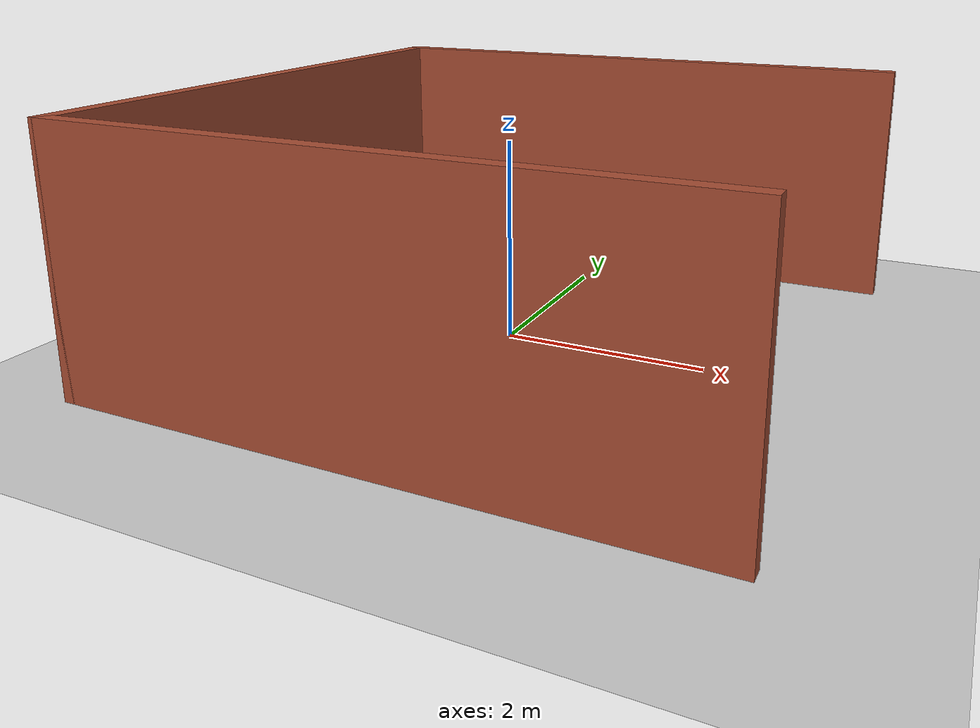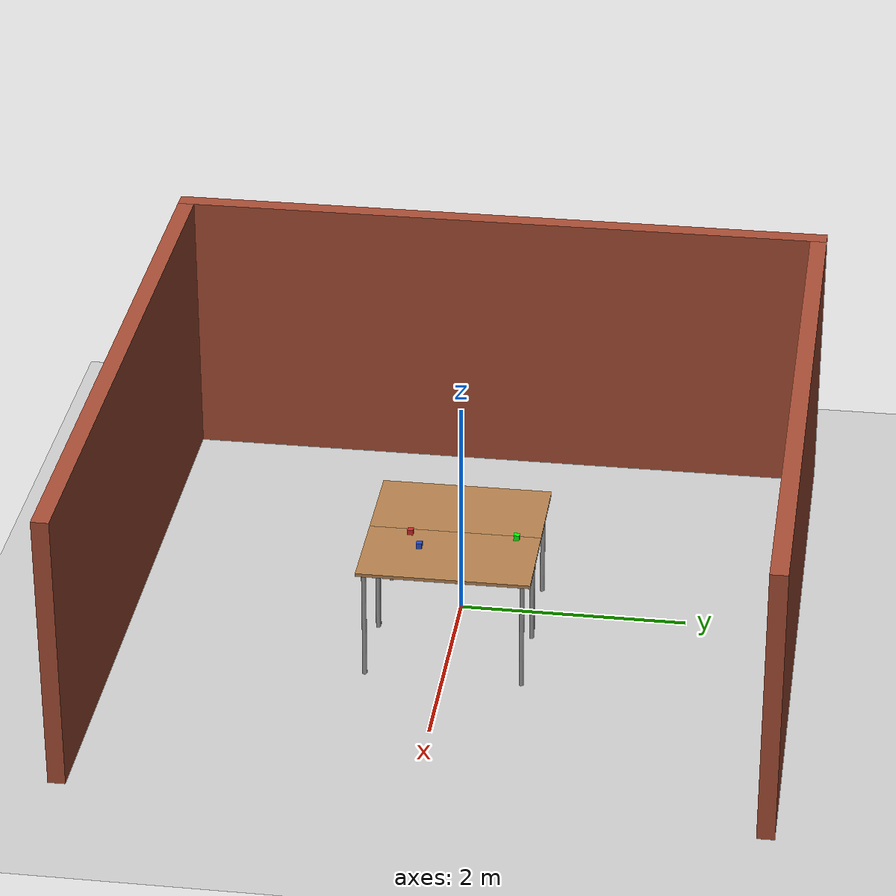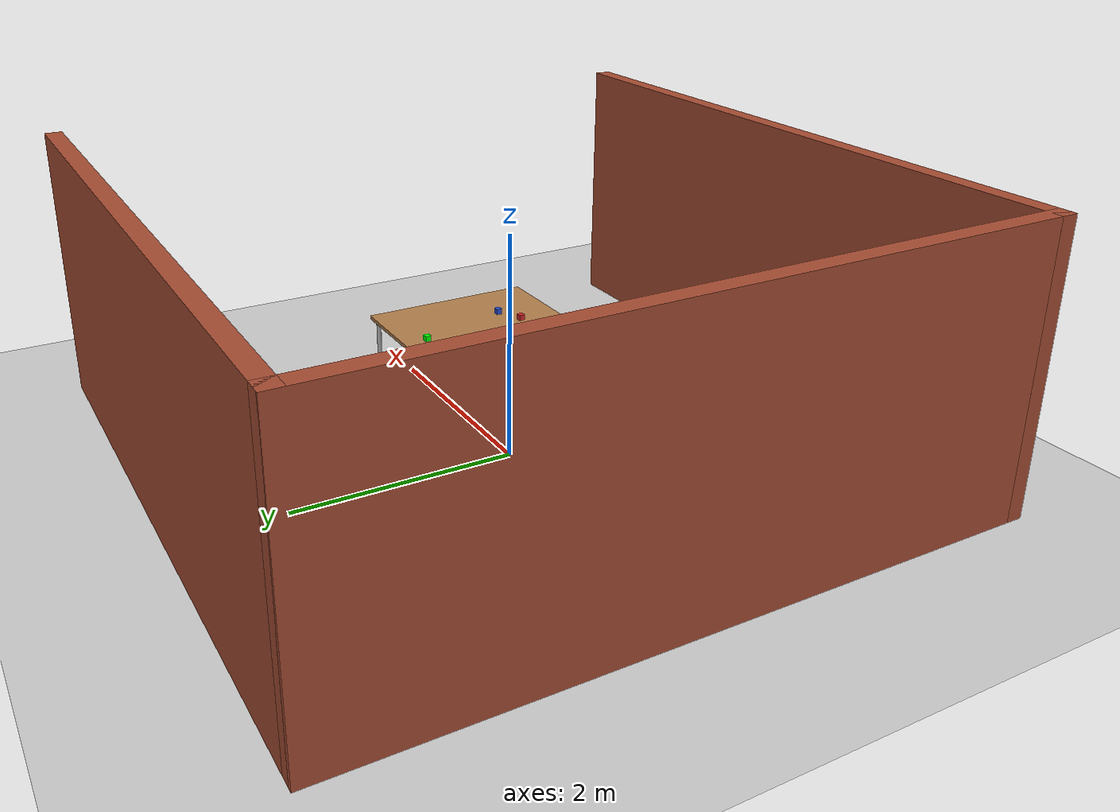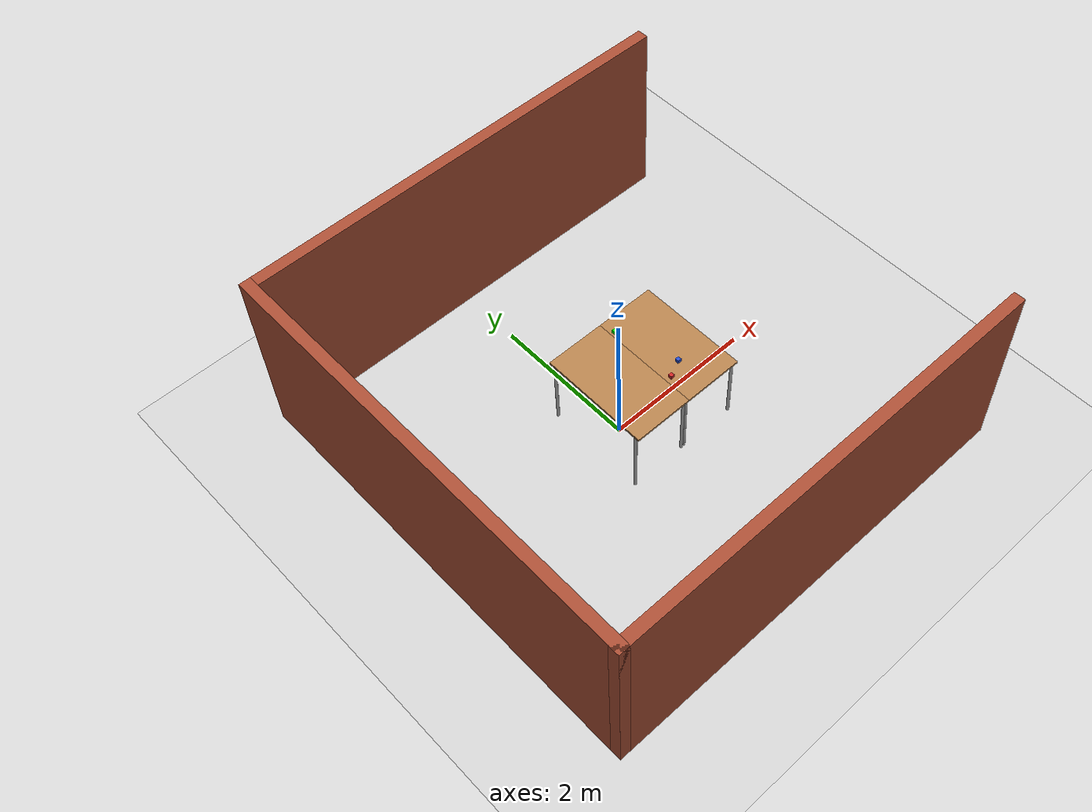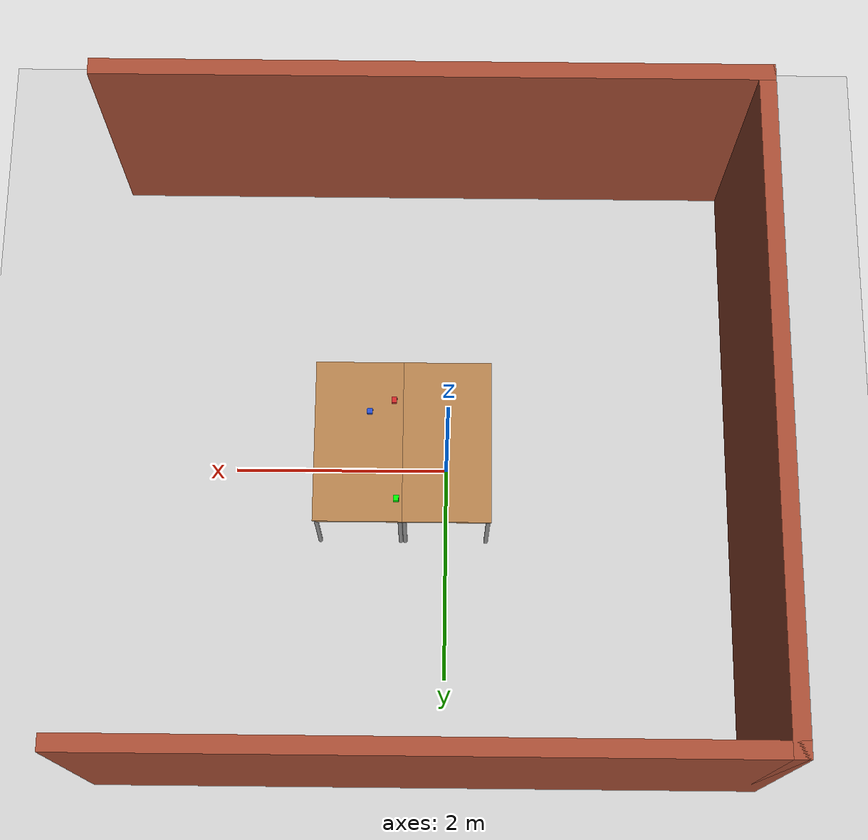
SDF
<sdf version="1.7">
 <world name="default">
  <light name="sun" type="directional">
   <pose>0 0 10 0 -0 0</pose>
   <diffuse>0.8 0.8 0.8 1</diffuse>
   <specular>0.2 0.2 0.2 1</specular>
   <attenuation>
    <range>1000</range>
    <constant>0.9</constant>
    <linear>0.01</linear>
    <quadratic>0.001</quadratic>
   </attenuation>
   <direction>-0.5 0.1 -0.9</direction>
   <spot><inner_angle>0</inner_angle><outer_angle>0</outer_angle><falloff>0</falloff></spot>
  </light>
  <model name="ground_plane">
   <static>1</static>
   <link name="link">
    <collision name="collision">
     <geometry><plane><normal>0 0 1</normal><size>100 100</size></plane></geometry>
     <surface><friction><ode><mu>100</mu><mu2>50</mu2></ode></friction></surface>
    </collision>
    <visual name="visual">
     <cast_shadows>0</cast_shadows>
     <geometry><plane><normal>0 0 1</normal><size>100 100</size></plane></geometry>
     <material>
      <script><uri>file://media/materials/scripts/gazebo.material</uri><name>Gazebo/Grey</name></script>
     </material>
    </visual>
   </link>
  </model>
  <gravity>0 0 -9.8</gravity>
  <magnetic_field>6e-06 2.3e-05 -4.2e-05</magnetic_field>
  <atmosphere type="adiabatic"/>
  <physics type="ode">
   <max_step_size>0.001</max_step_size>
   <real_time_factor>1</real_time_factor>
   <real_time_update_rate>1000</real_time_update_rate>
  </physics>
  <scene><ambient>0.4 0.4 0.4 1</ambient><background>0.7 0.7 0.7 1</background><shadows>1</shadows></scene>
  <audio><device>default</device></audio>
  <spherical_coordinates>
   <surface_model>EARTH_WGS84</surface_model>
   <latitude_deg>0</latitude_deg>
   <longitude_deg>0</longitude_deg>
   <elevation>0</elevation>
   <heading_deg>0</heading_deg>
  </spherical_coordinates>
  <model name="table">
   <static>1</static>
   <link name="link">
    <collision name="surface">
     <pose>0 0 1 0 -0 0</pose>
     <geometry><box><size>1.5 0.8 0.03</size></box></geometry>
     <surface><friction><ode><mu>0.6</mu><mu2>0.6</mu2></ode></friction></surface>
    </collision>
    <visual name="visual1">
     <pose>0 0 1 0 -0 0</pose>
     <geometry><box><size>1.5 0.8 0.03</size></box></geometry>
     <material>
      <script><uri>file://media/materials/scripts/gazebo.material</uri><name>Gazebo/Wood</name></script>
     </material>
    </visual>
    <collision name="front_left_leg">
     <pose>0.68 0.38 0.5 0 -0 0</pose>
     <geometry><cylinder><radius>0.02</radius><length>1</length></cylinder></geometry>
    </collision>
    <visual name="front_left_leg">
     <pose>0.68 0.38 0.5 0 -0 0</pose>
     <geometry><cylinder><radius>0.02</radius><length>1</length></cylinder></geometry>
     <material>
      <script><uri>file://media/materials/scripts/gazebo.material</uri><name>Gazebo/Grey</name></script>
     </material>
    </visual>
    <collision name="front_right_leg">
     <pose>0.68 -0.38 0.5 0 -0 0</pose>
     <geometry><cylinder><radius>0.02</radius><length>1</length></cylinder></geometry>
    </collision>
    <visual name="front_right_leg">
     <pose>0.68 -0.38 0.5 0 -0 0</pose>
     <geometry><cylinder><radius>0.02</radius><length>1</length></cylinder></geometry>
     <material>
      <script><uri>file://media/materials/scripts/gazebo.material</uri><name>Gazebo/Grey</name></script>
     </material>
    </visual>
    <collision name="back_right_leg">
     <pose>-0.68 -0.38 0.5 0 -0 0</pose>
     <geometry><cylinder><radius>0.02</radius><length>1</length></cylinder></geometry>
    </collision>
    <visual name="back_right_leg">
     <pose>-0.68 -0.38 0.5 0 -0 0</pose>
     <geometry><cylinder><radius>0.02</radius><length>1</length></cylinder></geometry>
     <material>
      <script><uri>file://media/materials/scripts/gazebo.material</uri><name>Gazebo/Grey</name></script>
     </material>
    </visual>
    <collision name="back_left_leg">
     <pose>-0.68 0.38 0.5 0 -0 0</pose>
     <geometry><cylinder><radius>0.02</radius><length>1</length></cylinder></geometry>
    </collision>
    <visual name="back_left_leg">
     <pose>-0.68 0.38 0.5 0 -0 0</pose>
     <geometry><cylinder><radius>0.02</radius><length>1</length></cylinder></geometry>
     <material>
      <script><uri>file://media/materials/scripts/gazebo.material</uri><name>Gazebo/Grey</name></script>
     </material>
    </visual>
   </link>
   <pose>0 0 0 0 -0 1.5708</pose>
  </model>
  <model name="table_0">
   <static>1</static>
   <link name="link">
    <collision name="surface">
     <pose>0 0 1 0 -0 0</pose>
     <geometry><box><size>1.5 0.8 0.03</size></box></geometry>
     <surface><friction><ode><mu>0.6</mu><mu2>0.6</mu2></ode></friction></surface>
    </collision>
    <visual name="visual1">
     <pose>0 0 1 0 -0 0</pose>
     <geometry><box><size>1.5 0.8 0.03</size></box></geometry>
     <material>
      <script><uri>file://media/materials/scripts/gazebo.material</uri><name>Gazebo/Wood</name></script>
     </material>
    </visual>
    <collision name="front_left_leg">
     <pose>0.68 0.38 0.5 0 -0 0</pose>
     <geometry><cylinder><radius>0.02</radius><length>1</length></cylinder></geometry>
    </collision>
    <visual name="front_left_leg">
     <pose>0.68 0.38 0.5 0 -0 0</pose>
     <geometry><cylinder><radius>0.02</radius><length>1</length></cylinder></geometry>
     <material>
      <script><uri>file://media/materials/scripts/gazebo.material</uri><name>Gazebo/Grey</name></script>
     </material>
    </visual>
    <collision name="front_right_leg">
     <pose>0.68 -0.38 0.5 0 -0 0</pose>
     <geometry><cylinder><radius>0.02</radius><length>1</length></cylinder></geometry>
    </collision>
    <visual name="front_right_leg">
     <pose>0.68 -0.38 0.5 0 -0 0</pose>
     <geometry><cylinder><radius>0.02</radius><length>1</length></cylinder></geometry>
     <material>
      <script><uri>file://media/materials/scripts/gazebo.material</uri><name>Gazebo/Grey</name></script>
     </material>
    </visual>
    <collision name="back_right_leg">
     <pose>-0.68 -0.38 0.5 0 -0 0</pose>
     <geometry><cylinder><radius>0.02</radius><length>1</length></cylinder></geometry>
    </collision>
    <visual name="back_right_leg">
     <pose>-0.68 -0.38 0.5 0 -0 0</pose>
     <geometry><cylinder><radius>0.02</radius><length>1</length></cylinder></geometry>
     <material>
      <script><uri>file://media/materials/scripts/gazebo.material</uri><name>Gazebo/Grey</name></script>
     </material>
    </visual>
    <collision name="back_left_leg">
     <pose>-0.68 0.38 0.5 0 -0 0</pose>
     <geometry><cylinder><radius>0.02</radius><length>1</length></cylinder></geometry>
    </collision>
    <visual name="back_left_leg">
     <pose>-0.68 0.38 0.5 0 -0 0</pose>
     <geometry><cylinder><radius>0.02</radius><length>1</length></cylinder></geometry>
     <material>
      <script><uri>file://media/materials/scripts/gazebo.material</uri><name>Gazebo/Grey</name></script>
     </material>
    </visual>
   </link>
   <pose>0.8 0 0 0 -0 1.5708</pose>
  </model>
  <model name="building">
   <pose>0.172106 -0.01584 0 0 -0 0</pose>
   <link name="Wall_14">
    <collision name="Wall_14_Collision">
     <geometry><box><size>6 0.15 2.5</size></box></geometry>
     <pose>0 0 1.25 0 -0 0</pose>
    </collision>
    <visual name="Wall_14_Visual">
     <pose>0 0 1.25 0 -0 0</pose>
     <geometry><box><size>6 0.15 2.5</size></box></geometry>
     <material>
      <script><uri>file://media/materials/scripts/gazebo.material</uri><name>Gazebo/Bricks</name></script>
      <ambient>1 1 1 1</ambient>
     </material>
     <meta><layer>0</layer></meta>
    </visual>
    <pose>0 2.925 0 0 -0 0</pose>
   </link>
   <link name="Wall_16">
    <collision name="Wall_16_Collision">
     <geometry><box><size>6 0.15 2.5</size></box></geometry>
     <pose>0 0 1.25 0 -0 0</pose>
    </collision>
    <visual name="Wall_16_Visual">
     <pose>0 0 1.25 0 -0 0</pose>
     <geometry><box><size>6 0.15 2.5</size></box></geometry>
     <material>
      <script><uri>file://media/materials/scripts/gazebo.material</uri><name>Gazebo/Bricks</name></script>
      <ambient>1 1 1 1</ambient>
     </material>
     <meta><layer>0</layer></meta>
    </visual>
    <pose>0 -2.925 0 0 -0 0</pose>
   </link>
   <link name="Wall_9">
    <collision name="Wall_9_Collision">
     <geometry><box><size>6 0.15 2.5</size></box></geometry>
     <pose>0 0 1.25 0 -0 0</pose>
    </collision>
    <visual name="Wall_9_Visual">
     <pose>0 0 1.25 0 -0 0</pose>
     <geometry><box><size>6 0.15 2.5</size></box></geometry>
     <material>
      <script><uri>file://media/materials/scripts/gazebo.material</uri><name>Gazebo/Bricks</name></script>
      <ambient>1 1 1 1</ambient>
     </material>
     <meta><layer>0</layer></meta>
    </visual>
    <pose>-2.925 0 0 0 -0 1.5708</pose>
   </link>
   <static>1</static>
  </model>
  <model name="blue_box">
   <link name="link">
    <inertial>
     <mass>1</mass>
     <inertia>
      <ixx>0.166667</ixx>
      <ixy>0</ixy>
      <ixz>0</ixz>
      <iyy>0.166667</iyy>
      <iyz>0</iyz>
      <izz>0.166667</izz>
     </inertia>
    </inertial>
    <visual name="visual">
     <geometry><box><size>0.05 0.05 0.05</size></box></geometry>
     <material>
      <script><name>Gazebo/Blue</name><uri>file://media/materials/scripts/gazebo.material</uri></script>
      <shader type="pixel"><normal_map>__default__</normal_map></shader>
      <ambient>0 0 1 1</ambient>
      <diffuse>0 0 1 1</diffuse>
      <specular>0.1 0.1 0.1 1</specular>
      <emissive>0 0 0 1</emissive>
     </material>
    </visual>
    <collision name="collision">
     <geometry><box><size>0.05 0.05 0.05</size></box></geometry>
     <surface>
      <friction>
       <ode><mu>1</mu><mu2>1</mu2><fdir1>0 0 0</fdir1><slip1>0</slip1><slip2>0</slip2></ode>
       <torsional>
        <coefficient>1</coefficient>
        <patch_radius>0</patch_radius>
        <surface_radius>0</surface_radius>
        <use_patch_radius>1</use_patch_radius>
        <ode><slip>0</slip></ode>
       </torsional>
      </friction>
      <bounce><restitution_coefficient>0</restitution_coefficient><threshold>1e+06</threshold></bounce>
      <contact>
       <collide_without_contact>0</collide_without_contact>
       <collide_without_contact_bitmask>1</collide_without_contact_bitmask>
       <collide_bitmask>1</collide_bitmask>
       <ode>
        <soft_cfm>0</soft_cfm>
        <soft_erp>0.2</soft_erp>
        <kp>1e+13</kp>
        <kd>1</kd>
        <max_vel>0.01</max_vel>
        <min_depth>0</min_depth>
       </ode>
       <bullet>
        <split_impulse>1</split_impulse>
        <split_impulse_penetration_threshold>-0.01</split_impulse_penetration_threshold>
        <soft_cfm>0</soft_cfm>
        <soft_erp>0.2</soft_erp>
        <kp>1e+13</kp>
        <kd>1</kd>
       </bullet>
      </contact>
     </surface>
    </collision>
   </link>
   <static>0</static>
   <pose>0.699992 -0.27068 1.04 2e-06 -5e-06 8.7e-05</pose>
  </model>
  <model name="red_box">
   <link name="link">
    <inertial>
     <mass>1</mass>
     <inertia>
      <ixx>0.166667</ixx>
      <ixy>0</ixy>
      <ixz>0</ixz>
      <iyy>0.166667</iyy>
      <iyz>0</iyz>
      <izz>0.166667</izz>
     </inertia>
    </inertial>
    <visual name="visual">
     <geometry><box><size>0.05 0.05 0.05</size></box></geometry>
     <material>
      <script><name>Gazebo/Red</name><uri>file://media/materials/scripts/gazebo.material</uri></script>
      <shader type="pixel"><normal_map>__default__</normal_map></shader>
      <ambient>1 0 0 1</ambient>
      <diffuse>1 0 0 1</diffuse>
      <specular>0.1 0.1 0.1 1</specular>
      <emissive>0 0 0 1</emissive>
     </material>
    </visual>
    <collision name="collision">
     <geometry><box><size>0.05 0.05 0.05</size></box></geometry>
     <surface>
      <friction>
       <ode><mu>1</mu><mu2>1</mu2><fdir1>0 0 0</fdir1><slip1>0</slip1><slip2>0</slip2></ode>
       <torsional>
        <coefficient>1</coefficient>
        <patch_radius>0</patch_radius>
        <surface_radius>0</surface_radius>
        <use_patch_radius>1</use_patch_radius>
        <ode><slip>0</slip></ode>
       </torsional>
      </friction>
      <bounce><restitution_coefficient>0</restitution_coefficient><threshold>1e+06</threshold></bounce>
      <contact>
       <collide_without_contact>0</collide_without_contact>
       <collide_without_contact_bitmask>1</collide_without_contact_bitmask>
       <collide_bitmask>1</collide_bitmask>
       <ode>
        <soft_cfm>0</soft_cfm>
        <soft_erp>0.2</soft_erp>
        <kp>1e+13</kp>
        <kd>1</kd>
        <max_vel>0.01</max_vel>
        <min_depth>0</min_depth>
       </ode>
       <bullet>
        <split_impulse>1</split_impulse>
        <split_impulse_penetration_threshold>-0.01</split_impulse_penetration_threshold>
        <soft_cfm>0</soft_cfm>
        <soft_erp>0.2</soft_erp>
        <kp>1e+13</kp>
        <kd>1</kd>
       </bullet>
      </contact>
     </surface>
    </collision>
   </link>
   <static>0</static>
   <pose>0.48176 -0.377271 1.04 -4e-06 -6e-06 0.000107</pose>
  </model>
  <model name="green_box">
   <link name="link">
    <inertial>
     <mass>1</mass>
     <inertia>
      <ixx>0.166667</ixx>
      <ixy>0</ixy>
      <ixz>0</ixz>
      <iyy>0.166667</iyy>
      <iyz>0</iyz>
      <izz>0.166667</izz>
     </inertia>
    </inertial>
    <visual name="visual">
     <geometry><box><size>0.05 0.05 0.05</size></box></geometry>
     <material>
      <script><name>Gazebo/Gray</name><uri>file://media/materials/scripts/gazebo.material</uri></script>
      <shader type="pixel"><normal_map>__default__</normal_map></shader>
      <ambient>0 1 0 1</ambient>
      <diffuse>0 1 0 1</diffuse>
      <specular>0.1 0.1 0.1 1</specular>
      <emissive>0 0 0 1</emissive>
     </material>
    </visual>
    <collision name="collision">
     <geometry><box><size>0.05 0.05 0.05</size></box></geometry>
     <surface>
      <friction>
       <ode><mu>1</mu><mu2>1</mu2><fdir1>0 0 0</fdir1><slip1>0</slip1><slip2>0</slip2></ode>
       <torsional>
        <coefficient>1</coefficient>
        <patch_radius>0</patch_radius>
        <surface_radius>0</surface_radius>
        <use_patch_radius>1</use_patch_radius>
        <ode><slip>0</slip></ode>
       </torsional>
      </friction>
      <bounce><restitution_coefficient>0</restitution_coefficient><threshold>1e+06</threshold></bounce>
      <contact>
       <collide_without_contact>0</collide_without_contact>
       <collide_without_contact_bitmask>1</collide_without_contact_bitmask>
       <collide_bitmask>1</collide_bitmask>
       <ode>
        <soft_cfm>0</soft_cfm>
        <soft_erp>0.2</soft_erp>
        <kp>1e+13</kp>
        <kd>1</kd>
        <max_vel>0.01</max_vel>
        <min_depth>0</min_depth>
       </ode>
       <bullet>
        <split_impulse>1</split_impulse>
        <split_impulse_penetration_threshold>-0.01</split_impulse_penetration_threshold>
        <soft_cfm>0</soft_cfm>
        <soft_erp>0.2</soft_erp>
        <kp>1e+13</kp>
        <kd>1</kd>
       </bullet>
      </contact>
     </surface>
    </collision>
   </link>
   <static>0</static>
   <pose>0.453748 0.54477 1.04 1e-05 1.5e-05 -1.5e-05</pose>
  </model>
 </world>
</sdf>
